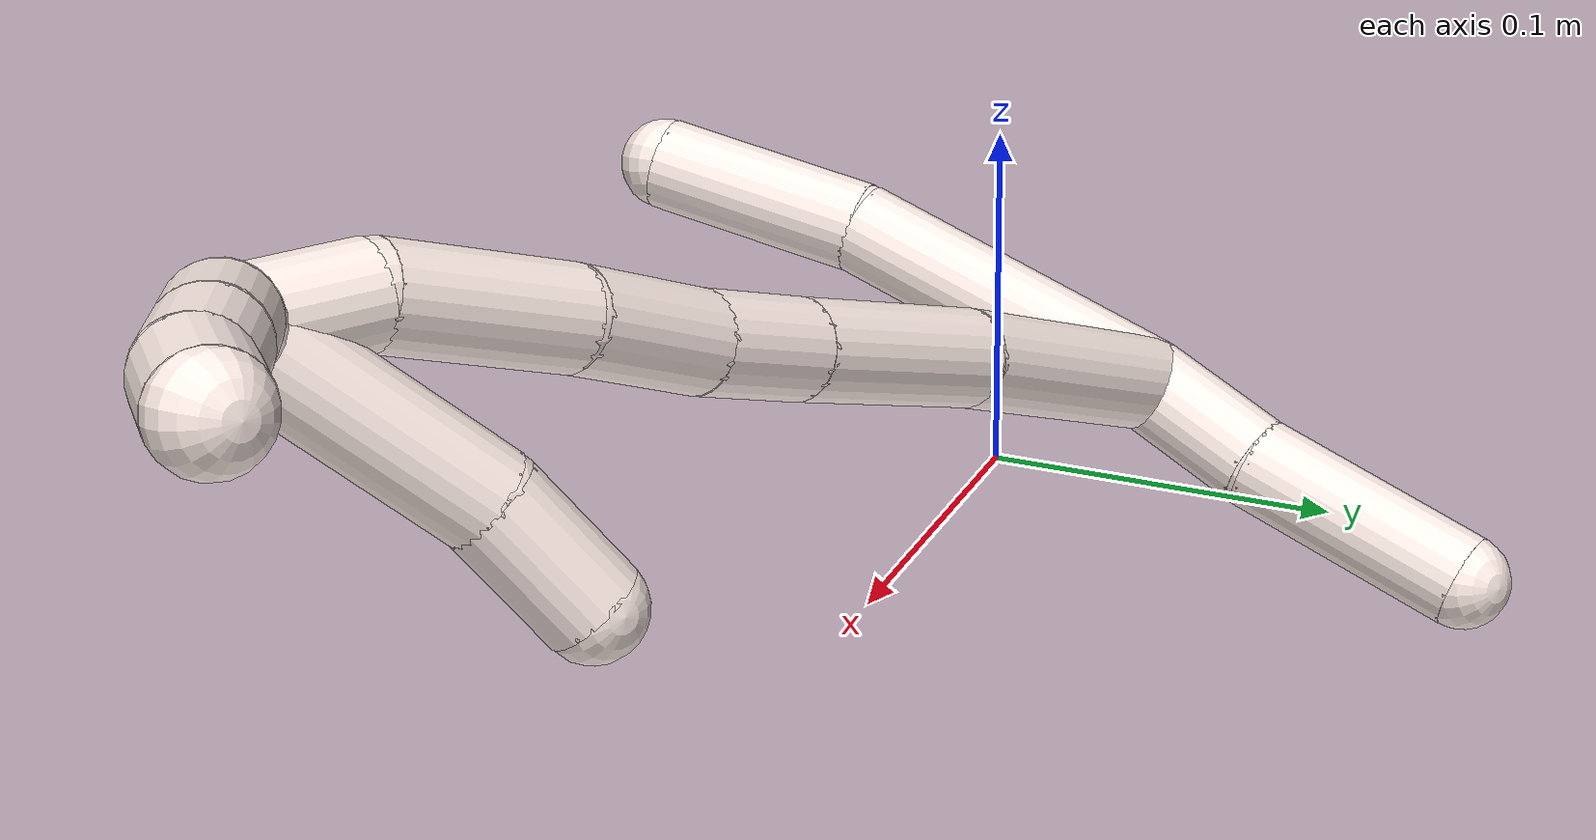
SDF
<sdf version="1.7">
 <world name="default">
  <model name="11">
   <static>0</static>
   <link name="11">
    <collision name="collision-cylinder-e_1_2_8">
     <pose>0.018487 -0.021534 -0.035507 2.59643 0.418842 1.30014</pose>
     <geometry><cylinder><radius>0.0125</radius><length>0.090911</length></cylinder></geometry>
     <surface>
      <friction><ode><mu>1.16</mu><mu2>1.16</mu2><slip1>0</slip1><slip2>0</slip2></ode></friction>
      <contact><ode><kp>1e+06</kp><kd>1</kd><max_vel>0</max_vel><min_depth>0.001</min_depth></ode></contact>
     </surface>
    </collision>
    <visual name="visual-cylinder-e_1_2_8">
     <pose>0.018487 -0.021534 -0.035507 2.59643 0.418842 1.30014</pose>
     <geometry><cylinder><radius>0.0125</radius><length>0.090911</length></cylinder></geometry>
     <material><ambient>1 0.933333 0.909804 1</ambient></material>
    </visual>
    <collision name="collision-cylinder-e_2_8_6">
     <pose>0.051861 -0.053023 -0.094511 2.74083 0.528096 1.85301</pose>
     <geometry><cylinder><radius>0.0125</radius><length>0.059089</length></cylinder></geometry>
     <surface>
      <friction><ode><mu>1.16</mu><mu2>1.16</mu2><slip1>0</slip1><slip2>0</slip2></ode></friction>
      <contact><ode><kp>1e+06</kp><kd>1</kd><max_vel>0</max_vel><min_depth>0.001</min_depth></ode></contact>
     </surface>
    </collision>
    <visual name="visual-cylinder-e_2_8_6">
     <pose>0.051861 -0.053023 -0.094511 2.74083 0.528096 1.85301</pose>
     <geometry><cylinder><radius>0.0125</radius><length>0.059089</length></cylinder></geometry>
     <material><ambient>1 0.933333 0.909804 1</ambient></material>
    </visual>
    <collision name="collision-cylinder-e_1_2_9">
     <pose>-0.004107 0.009705 0.015467 -0.560374 -0.221217 0.063896</pose>
     <geometry><cylinder><radius>0.0125</radius><length>0.037432</length></cylinder></geometry>
     <surface>
      <friction><ode><mu>1.16</mu><mu2>1.16</mu2><slip1>0</slip1><slip2>0</slip2></ode></friction>
      <contact><ode><kp>1e+06</kp><kd>1</kd><max_vel>0</max_vel><min_depth>0.001</min_depth></ode></contact>
     </surface>
    </collision>
    <visual name="visual-cylinder-e_1_2_9">
     <pose>-0.004107 0.009705 0.015467 -0.560374 -0.221217 0.063896</pose>
     <geometry><cylinder><radius>0.0125</radius><length>0.037432</length></cylinder></geometry>
     <material><ambient>1 0.933333 0.909804 1</ambient></material>
    </visual>
    <collision name="collision-cylinder-e_2_9_5">
     <pose>-0.01861 0.03387 0.056654 -0.512175 -0.338785 0.089505</pose>
     <geometry><cylinder><radius>0.0125</radius><length>0.062568</length></cylinder></geometry>
     <surface>
      <friction><ode><mu>1.16</mu><mu2>1.16</mu2><slip1>0</slip1><slip2>0</slip2></ode></friction>
      <contact><ode><kp>1e+06</kp><kd>1</kd><max_vel>0</max_vel><min_depth>0.001</min_depth></ode></contact>
     </surface>
    </collision>
    <visual name="visual-cylinder-e_2_9_5">
     <pose>-0.01861 0.03387 0.056654 -0.512175 -0.338785 0.089505</pose>
     <geometry><cylinder><radius>0.0125</radius><length>0.062568</length></cylinder></geometry>
     <material><ambient>1 0.933333 0.909804 1</ambient></material>
    </visual>
    <collision name="collision-cylinder-e_1_2_10">
     <pose>0.037302 -0.013158 0.0085 0.997224 1.17321 0.694481</pose>
     <geometry><cylinder><radius>0.0125</radius><length>0.080916</length></cylinder></geometry>
     <surface>
      <friction><ode><mu>1.16</mu><mu2>1.16</mu2><slip1>0</slip1><slip2>0</slip2></ode></friction>
      <contact><ode><kp>1e+06</kp><kd>1</kd><max_vel>0</max_vel><min_depth>0.001</min_depth></ode></contact>
     </surface>
    </collision>
    <visual name="visual-cylinder-e_1_2_10">
     <pose>0.037302 -0.013158 0.0085 0.997224 1.17321 0.694481</pose>
     <geometry><cylinder><radius>0.0125</radius><length>0.080916</length></cylinder></geometry>
     <material><ambient>1 0.933333 0.909804 1</ambient></material>
    </visual>
    <collision name="collision-cylinder-e_2_10_11">
     <pose>0.103616 -0.034647 0.021998 1.03048 1.24767 0.773991</pose>
     <geometry><cylinder><radius>0.0125</radius><length>0.06119</length></cylinder></geometry>
     <surface>
      <friction><ode><mu>1.16</mu><mu2>1.16</mu2><slip1>0</slip1><slip2>0</slip2></ode></friction>
      <contact><ode><kp>1e+06</kp><kd>1</kd><max_vel>0</max_vel><min_depth>0.001</min_depth></ode></contact>
     </surface>
    </collision>
    <visual name="visual-cylinder-e_2_10_11">
     <pose>0.103616 -0.034647 0.021998 1.03048 1.24767 0.773991</pose>
     <geometry><cylinder><radius>0.0125</radius><length>0.06119</length></cylinder></geometry>
     <material><ambient>1 0.933333 0.909804 1</ambient></material>
    </visual>
    <collision name="collision-cylinder-e_3_11_12">
     <pose>0.148235 -0.047719 0.029393 1.10249 1.24271 0.82932</pose>
     <geometry><cylinder><radius>0.0125</radius><length>0.032974</length></cylinder></geometry>
     <surface>
      <friction><ode><mu>1.16</mu><mu2>1.16</mu2><slip1>0</slip1><slip2>0</slip2></ode></friction>
      <contact><ode><kp>1e+06</kp><kd>1</kd><max_vel>0</max_vel><min_depth>0.001</min_depth></ode></contact>
     </surface>
    </collision>
    <visual name="visual-cylinder-e_3_11_12">
     <pose>0.148235 -0.047719 0.029393 1.10249 1.24271 0.82932</pose>
     <geometry><cylinder><radius>0.0125</radius><length>0.032974</length></cylinder></geometry>
     <material><ambient>1 0.933333 0.909804 1</ambient></material>
    </visual>
    <collision name="collision-cylinder-e_4_12_13">
     <pose>0.182185 -0.059672 0.035109 1.13963 1.16231 0.796667</pose>
     <geometry><cylinder><radius>0.0125</radius><length>0.039972</length></cylinder></geometry>
     <surface>
      <friction><ode><mu>1.16</mu><mu2>1.16</mu2><slip1>0</slip1><slip2>0</slip2></ode></friction>
      <contact><ode><kp>1e+06</kp><kd>1</kd><max_vel>0</max_vel><min_depth>0.001</min_depth></ode></contact>
     </surface>
    </collision>
    <visual name="visual-cylinder-e_4_12_13">
     <pose>0.182185 -0.059672 0.035109 1.13963 1.16231 0.796667</pose>
     <geometry><cylinder><radius>0.0125</radius><length>0.039972</length></cylinder></geometry>
     <material><ambient>1 0.933333 0.909804 1</ambient></material>
    </visual>
    <collision name="collision-cylinder-e_5_13_14">
     <pose>0.225351 -0.075106 0.039363 1.45748 1.24904 1.14342</pose>
     <geometry><cylinder><radius>0.0125</radius><length>0.052335</length></cylinder></geometry>
     <surface>
      <friction><ode><mu>1.16</mu><mu2>1.16</mu2><slip1>0</slip1><slip2>0</slip2></ode></friction>
      <contact><ode><kp>1e+06</kp><kd>1</kd><max_vel>0</max_vel><min_depth>0.001</min_depth></ode></contact>
     </surface>
    </collision>
    <visual name="visual-cylinder-e_5_13_14">
     <pose>0.225351 -0.075106 0.039363 1.45748 1.24904 1.14342</pose>
     <geometry><cylinder><radius>0.0125</radius><length>0.052335</length></cylinder></geometry>
     <material><ambient>1 0.933333 0.909804 1</ambient></material>
    </visual>
    <collision name="collision-cylinder-e_6_14_1">
     <pose>0.266466 -0.083338 0.039572 3.12717 1.5262 3.12651</pose>
     <geometry><cylinder><radius>0.0125</radius><length>0.032613</length></cylinder></geometry>
     <surface>
      <friction><ode><mu>1.16</mu><mu2>1.16</mu2><slip1>0</slip1><slip2>0</slip2></ode></friction>
      <contact><ode><kp>1e+06</kp><kd>1</kd><max_vel>0</max_vel><min_depth>0.001</min_depth></ode></contact>
     </surface>
    </collision>
    <visual name="visual-cylinder-e_6_14_1">
     <pose>0.266466 -0.083338 0.039572 3.12717 1.5262 3.12651</pose>
     <geometry><cylinder><radius>0.0125</radius><length>0.032613</length></cylinder></geometry>
     <material><ambient>1 0.933333 0.909804 1</ambient></material>
    </visual>
    <collision name="collision-cylinder-e_1_1_15">
     <pose>0.259985 -0.060335 0.047258 -1.2203 -0.74876 0.536175</pose>
     <geometry><cylinder><radius>0.0125</radius><length>0.066901</length></cylinder></geometry>
     <surface>
      <friction><ode><mu>1.16</mu><mu2>1.16</mu2><slip1>0</slip1><slip2>0</slip2></ode></friction>
      <contact><ode><kp>1e+06</kp><kd>1</kd><max_vel>0</max_vel><min_depth>0.001</min_depth></ode></contact>
     </surface>
    </collision>
    <visual name="visual-cylinder-e_1_1_15">
     <pose>0.259985 -0.060335 0.047258 -1.2203 -0.74876 0.536175</pose>
     <geometry><cylinder><radius>0.0125</radius><length>0.066901</length></cylinder></geometry>
     <material><ambient>1 0.933333 0.909804 1</ambient></material>
    </visual>
    <collision name="collision-cylinder-e_2_15_4">
     <pose>0.228463 -0.0238 0.059477 -1.29651 -0.557188 0.426718</pose>
     <geometry><cylinder><radius>0.0125</radius><length>0.033099</length></cylinder></geometry>
     <surface>
      <friction><ode><mu>1.16</mu><mu2>1.16</mu2><slip1>0</slip1><slip2>0</slip2></ode></friction>
      <contact><ode><kp>1e+06</kp><kd>1</kd><max_vel>0</max_vel><min_depth>0.001</min_depth></ode></contact>
     </surface>
    </collision>
    <visual name="visual-cylinder-e_2_15_4">
     <pose>0.228463 -0.0238 0.059477 -1.29651 -0.557188 0.426718</pose>
     <geometry><cylinder><radius>0.0125</radius><length>0.033099</length></cylinder></geometry>
     <material><ambient>1 0.933333 0.909804 1</ambient></material>
    </visual>
    <collision name="collision-cylinder-e_1_1_16">
     <pose>0.289711 -0.087139 0.051866 0.283283 0.473881 0.06884</pose>
     <geometry><cylinder><radius>0.0125</radius><length>0.030482</length></cylinder></geometry>
     <surface>
      <friction><ode><mu>1.16</mu><mu2>1.16</mu2><slip1>0</slip1><slip2>0</slip2></ode></friction>
      <contact><ode><kp>1e+06</kp><kd>1</kd><max_vel>0</max_vel><min_depth>0.001</min_depth></ode></contact>
     </surface>
    </collision>
    <visual name="visual-cylinder-e_1_1_16">
     <pose>0.289711 -0.087139 0.051866 0.283283 0.473881 0.06884</pose>
     <geometry><cylinder><radius>0.0125</radius><length>0.030482</length></cylinder></geometry>
     <material><ambient>1 0.933333 0.909804 1</ambient></material>
    </visual>
    <collision name="collision-cylinder-e_2_16_17">
     <pose>0.303445 -0.091376 0.07573 0.041131 0.55832 0.011792</pose>
     <geometry><cylinder><radius>0.0125</radius><length>0.025589</length></cylinder></geometry>
     <surface>
      <friction><ode><mu>1.16</mu><mu2>1.16</mu2><slip1>0</slip1><slip2>0</slip2></ode></friction>
      <contact><ode><kp>1e+06</kp><kd>1</kd><max_vel>0</max_vel><min_depth>0.001</min_depth></ode></contact>
     </surface>
    </collision>
    <visual name="visual-cylinder-e_2_16_17">
     <pose>0.303445 -0.091376 0.07573 0.041131 0.55832 0.011792</pose>
     <geometry><cylinder><radius>0.0125</radius><length>0.025589</length></cylinder></geometry>
     <material><ambient>1 0.933333 0.909804 1</ambient></material>
    </visual>
    <collision name="collision-cylinder-e_3_17_18">
     <pose>0.316421 -0.09139 0.095346 -0.049191 0.614447 -0.01561</pose>
     <geometry><cylinder><radius>0.0125</radius><length>0.021503</length></cylinder></geometry>
     <surface>
      <friction><ode><mu>1.16</mu><mu2>1.16</mu2><slip1>0</slip1><slip2>0</slip2></ode></friction>
      <contact><ode><kp>1e+06</kp><kd>1</kd><max_vel>0</max_vel><min_depth>0.001</min_depth></ode></contact>
     </surface>
    </collision>
    <visual name="visual-cylinder-e_3_17_18">
     <pose>0.316421 -0.09139 0.095346 -0.049191 0.614447 -0.01561</pose>
     <geometry><cylinder><radius>0.0125</radius><length>0.021503</length></cylinder></geometry>
     <material><ambient>1 0.933333 0.909804 1</ambient></material>
    </visual>
    <collision name="collision-cylinder-e_4_18_3">
     <pose>0.326596 -0.090064 0.114566 -0.085379 0.362611 -0.015661</pose>
     <geometry><cylinder><radius>0.0125</radius><length>0.022426</length></cylinder></geometry>
     <surface>
      <friction><ode><mu>1.16</mu><mu2>1.16</mu2><slip1>0</slip1><slip2>0</slip2></ode></friction>
      <contact><ode><kp>1e+06</kp><kd>1</kd><max_vel>0</max_vel><min_depth>0.001</min_depth></ode></contact>
     </surface>
    </collision>
    <visual name="visual-cylinder-e_4_18_3">
     <pose>0.326596 -0.090064 0.114566 -0.085379 0.362611 -0.015661</pose>
     <geometry><cylinder><radius>0.0125</radius><length>0.022426</length></cylinder></geometry>
     <material><ambient>1 0.933333 0.909804 1</ambient></material>
    </visual>
    <collision name="collision-sphere-3">
     <pose>0.330574 -0.08917 0.125012 0 -0 0</pose>
     <geometry><sphere><radius>0.0125</radius></sphere></geometry>
     <surface>
      <friction><ode><mu>1.16</mu><mu2>1.16</mu2><slip1>0</slip1><slip2>0</slip2></ode></friction>
      <contact><ode><kp>1e+06</kp><kd>1</kd><max_vel>0</max_vel><min_depth>0.001</min_depth></ode></contact>
     </surface>
    </collision>
    <visual name="visual-sphere-3">
     <pose>0.330574 -0.08917 0.125012 0 -0 0</pose>
     <geometry><sphere><radius>0.0125</radius></sphere></geometry>
     <material><ambient>1 0.933333 0.909804 1</ambient></material>
    </visual>
    <collision name="collision-sphere-10">
     <pose>0.074604 -0.026316 0.017001 0 -0 0</pose>
     <geometry><sphere><radius>0.0125</radius></sphere></geometry>
     <surface>
      <friction><ode><mu>1.16</mu><mu2>1.16</mu2><slip1>0</slip1><slip2>0</slip2></ode></friction>
      <contact><ode><kp>1e+06</kp><kd>1</kd><max_vel>0</max_vel><min_depth>0.001</min_depth></ode></contact>
     </surface>
    </collision>
    <visual name="visual-sphere-10">
     <pose>0.074604 -0.026316 0.017001 0 -0 0</pose>
     <geometry><sphere><radius>0.0125</radius></sphere></geometry>
     <material><ambient>1 0.933333 0.909804 1</ambient></material>
    </visual>
    <collision name="collision-sphere-5">
     <pose>-0.029007 0.04833 0.082374 0 -0 0</pose>
     <geometry><sphere><radius>0.0125</radius></sphere></geometry>
     <surface>
      <friction><ode><mu>1.16</mu><mu2>1.16</mu2><slip1>0</slip1><slip2>0</slip2></ode></friction>
      <contact><ode><kp>1e+06</kp><kd>1</kd><max_vel>0</max_vel><min_depth>0.001</min_depth></ode></contact>
     </surface>
    </collision>
    <visual name="visual-sphere-5">
     <pose>-0.029007 0.04833 0.082374 0 -0 0</pose>
     <geometry><sphere><radius>0.0125</radius></sphere></geometry>
     <material><ambient>1 0.933333 0.909804 1</ambient></material>
    </visual>
    <collision name="collision-sphere-6">
     <pose>0.066748 -0.062979 -0.118009 0 -0 0</pose>
     <geometry><sphere><radius>0.0125</radius></sphere></geometry>
     <surface>
      <friction><ode><mu>1.16</mu><mu2>1.16</mu2><slip1>0</slip1><slip2>0</slip2></ode></friction>
      <contact><ode><kp>1e+06</kp><kd>1</kd><max_vel>0</max_vel><min_depth>0.001</min_depth></ode></contact>
     </surface>
    </collision>
    <visual name="visual-sphere-6">
     <pose>0.066748 -0.062979 -0.118009 0 -0 0</pose>
     <geometry><sphere><radius>0.0125</radius></sphere></geometry>
     <material><ambient>1 0.933333 0.909804 1</ambient></material>
    </visual>
    <collision name="collision-sphere-9">
     <pose>-0.008213 0.01941 0.030934 0 -0 0</pose>
     <geometry><sphere><radius>0.0125</radius></sphere></geometry>
     <surface>
      <friction><ode><mu>1.16</mu><mu2>1.16</mu2><slip1>0</slip1><slip2>0</slip2></ode></friction>
      <contact><ode><kp>1e+06</kp><kd>1</kd><max_vel>0</max_vel><min_depth>0.001</min_depth></ode></contact>
     </surface>
    </collision>
    <visual name="visual-sphere-9">
     <pose>-0.008213 0.01941 0.030934 0 -0 0</pose>
     <geometry><sphere><radius>0.0125</radius></sphere></geometry>
     <material><ambient>1 0.933333 0.909804 1</ambient></material>
    </visual>
    <collision name="collision-sphere-2">
     <geometry><sphere><radius>0.0125</radius></sphere></geometry>
     <surface>
      <friction><ode><mu>1.16</mu><mu2>1.16</mu2><slip1>0</slip1><slip2>0</slip2></ode></friction>
      <contact><ode><kp>1e+06</kp><kd>1</kd><max_vel>0</max_vel><min_depth>0.001</min_depth></ode></contact>
     </surface>
    </collision>
    <visual name="visual-sphere-2">
     <geometry><sphere><radius>0.0125</radius></sphere></geometry>
     <material><ambient>1 0.933333 0.909804 1</ambient></material>
    </visual>
    <collision name="collision-sphere-8">
     <pose>0.036974 -0.043067 -0.071014 0 -0 0</pose>
     <geometry><sphere><radius>0.0125</radius></sphere></geometry>
     <surface>
      <friction><ode><mu>1.16</mu><mu2>1.16</mu2><slip1>0</slip1><slip2>0</slip2></ode></friction>
      <contact><ode><kp>1e+06</kp><kd>1</kd><max_vel>0</max_vel><min_depth>0.001</min_depth></ode></contact>
     </surface>
    </collision>
    <visual name="visual-sphere-8">
     <pose>0.036974 -0.043067 -0.071014 0 -0 0</pose>
     <geometry><sphere><radius>0.0125</radius></sphere></geometry>
     <material><ambient>1 0.933333 0.909804 1</ambient></material>
    </visual>
    <collision name="collision-sphere-11">
     <pose>0.132628 -0.042978 0.026995 0 -0 0</pose>
     <geometry><sphere><radius>0.0125</radius></sphere></geometry>
     <surface>
      <friction><ode><mu>1.16</mu><mu2>1.16</mu2><slip1>0</slip1><slip2>0</slip2></ode></friction>
      <contact><ode><kp>1e+06</kp><kd>1</kd><max_vel>0</max_vel><min_depth>0.001</min_depth></ode></contact>
     </surface>
    </collision>
    <visual name="visual-sphere-11">
     <pose>0.132628 -0.042978 0.026995 0 -0 0</pose>
     <geometry><sphere><radius>0.0125</radius></sphere></geometry>
     <material><ambient>1 0.933333 0.909804 1</ambient></material>
    </visual>
    <collision name="collision-sphere-12">
     <pose>0.163843 -0.052459 0.031791 0 -0 0</pose>
     <geometry><sphere><radius>0.0125</radius></sphere></geometry>
     <surface>
      <friction><ode><mu>1.16</mu><mu2>1.16</mu2><slip1>0</slip1><slip2>0</slip2></ode></friction>
      <contact><ode><kp>1e+06</kp><kd>1</kd><max_vel>0</max_vel><min_depth>0.001</min_depth></ode></contact>
     </surface>
    </collision>
    <visual name="visual-sphere-12">
     <pose>0.163843 -0.052459 0.031791 0 -0 0</pose>
     <geometry><sphere><radius>0.0125</radius></sphere></geometry>
     <material><ambient>1 0.933333 0.909804 1</ambient></material>
    </visual>
    <collision name="collision-sphere-13">
     <pose>0.200526 -0.066884 0.038427 0 -0 0</pose>
     <geometry><sphere><radius>0.0125</radius></sphere></geometry>
     <surface>
      <friction><ode><mu>1.16</mu><mu2>1.16</mu2><slip1>0</slip1><slip2>0</slip2></ode></friction>
      <contact><ode><kp>1e+06</kp><kd>1</kd><max_vel>0</max_vel><min_depth>0.001</min_depth></ode></contact>
     </surface>
    </collision>
    <visual name="visual-sphere-13">
     <pose>0.200526 -0.066884 0.038427 0 -0 0</pose>
     <geometry><sphere><radius>0.0125</radius></sphere></geometry>
     <material><ambient>1 0.933333 0.909804 1</ambient></material>
    </visual>
    <collision name="collision-sphere-14">
     <pose>0.250176 -0.083328 0.040299 0 -0 0</pose>
     <geometry><sphere><radius>0.0125</radius></sphere></geometry>
     <surface>
      <friction><ode><mu>1.16</mu><mu2>1.16</mu2><slip1>0</slip1><slip2>0</slip2></ode></friction>
      <contact><ode><kp>1e+06</kp><kd>1</kd><max_vel>0</max_vel><min_depth>0.001</min_depth></ode></contact>
     </surface>
    </collision>
    <visual name="visual-sphere-14">
     <pose>0.250176 -0.083328 0.040299 0 -0 0</pose>
     <geometry><sphere><radius>0.0125</radius></sphere></geometry>
     <material><ambient>1 0.933333 0.909804 1</ambient></material>
    </visual>
    <collision name="collision-sphere-1">
     <pose>0.282756 -0.083349 0.038845 0 -0 0</pose>
     <geometry><sphere><radius>0.0125</radius></sphere></geometry>
     <surface>
      <friction><ode><mu>1.16</mu><mu2>1.16</mu2><slip1>0</slip1><slip2>0</slip2></ode></friction>
      <contact><ode><kp>1e+06</kp><kd>1</kd><max_vel>0</max_vel><min_depth>0.001</min_depth></ode></contact>
     </surface>
    </collision>
    <visual name="visual-sphere-1">
     <pose>0.282756 -0.083349 0.038845 0 -0 0</pose>
     <geometry><sphere><radius>0.0125</radius></sphere></geometry>
     <material><ambient>1 0.933333 0.909804 1</ambient></material>
    </visual>
    <collision name="collision-sphere-18">
     <pose>0.322619 -0.090958 0.10412 0 -0 0</pose>
     <geometry><sphere><radius>0.0125</radius></sphere></geometry>
     <surface>
      <friction><ode><mu>1.16</mu><mu2>1.16</mu2><slip1>0</slip1><slip2>0</slip2></ode></friction>
      <contact><ode><kp>1e+06</kp><kd>1</kd><max_vel>0</max_vel><min_depth>0.001</min_depth></ode></contact>
     </surface>
    </collision>
    <visual name="visual-sphere-18">
     <pose>0.322619 -0.090958 0.10412 0 -0 0</pose>
     <geometry><sphere><radius>0.0125</radius></sphere></geometry>
     <material><ambient>1 0.933333 0.909804 1</ambient></material>
    </visual>
    <collision name="collision-sphere-15">
     <pose>0.237214 -0.037321 0.055672 0 -0 0</pose>
     <geometry><sphere><radius>0.0125</radius></sphere></geometry>
     <surface>
      <friction><ode><mu>1.16</mu><mu2>1.16</mu2><slip1>0</slip1><slip2>0</slip2></ode></friction>
      <contact><ode><kp>1e+06</kp><kd>1</kd><max_vel>0</max_vel><min_depth>0.001</min_depth></ode></contact>
     </surface>
    </collision>
    <visual name="visual-sphere-15">
     <pose>0.237214 -0.037321 0.055672 0 -0 0</pose>
     <geometry><sphere><radius>0.0125</radius></sphere></geometry>
     <material><ambient>1 0.933333 0.909804 1</ambient></material>
    </visual>
    <collision name="collision-sphere-4">
     <pose>0.219712 -0.010278 0.063281 0 -0 0</pose>
     <geometry><sphere><radius>0.0125</radius></sphere></geometry>
     <surface>
      <friction><ode><mu>1.16</mu><mu2>1.16</mu2><slip1>0</slip1><slip2>0</slip2></ode></friction>
      <contact><ode><kp>1e+06</kp><kd>1</kd><max_vel>0</max_vel><min_depth>0.001</min_depth></ode></contact>
     </surface>
    </collision>
    <visual name="visual-sphere-4">
     <pose>0.219712 -0.010278 0.063281 0 -0 0</pose>
     <geometry><sphere><radius>0.0125</radius></sphere></geometry>
     <material><ambient>1 0.933333 0.909804 1</ambient></material>
    </visual>
    <collision name="collision-sphere-16">
     <pose>0.296667 -0.09093 0.064887 0 -0 0</pose>
     <geometry><sphere><radius>0.0125</radius></sphere></geometry>
     <surface>
      <friction><ode><mu>1.16</mu><mu2>1.16</mu2><slip1>0</slip1><slip2>0</slip2></ode></friction>
      <contact><ode><kp>1e+06</kp><kd>1</kd><max_vel>0</max_vel><min_depth>0.001</min_depth></ode></contact>
     </surface>
    </collision>
    <visual name="visual-sphere-16">
     <pose>0.296667 -0.09093 0.064887 0 -0 0</pose>
     <geometry><sphere><radius>0.0125</radius></sphere></geometry>
     <material><ambient>1 0.933333 0.909804 1</ambient></material>
    </visual>
    <collision name="collision-sphere-17">
     <pose>0.310223 -0.091822 0.086572 0 -0 0</pose>
     <geometry><sphere><radius>0.0125</radius></sphere></geometry>
     <surface>
      <friction><ode><mu>1.16</mu><mu2>1.16</mu2><slip1>0</slip1><slip2>0</slip2></ode></friction>
      <contact><ode><kp>1e+06</kp><kd>1</kd><max_vel>0</max_vel><min_depth>0.001</min_depth></ode></contact>
     </surface>
    </collision>
    <visual name="visual-sphere-17">
     <pose>0.310223 -0.091822 0.086572 0 -0 0</pose>
     <geometry><sphere><radius>0.0125</radius></sphere></geometry>
     <material><ambient>1 0.933333 0.909804 1</ambient></material>
    </visual>
    <inertial>
     <pose>0.134825 -0.040272 0.021782 0 -0 0</pose>
     <mass>0.75</mass>
     <inertia>
      <ixx>0.000227</ixx>
      <ixy>0</ixy>
      <ixz>0</ixz>
      <iyy>0.000261</iyy>
      <iyz>0</iyz>
      <izz>-6.2e-05</izz>
     </inertia>
    </inertial>
   </link>
   <pose>0.051569 0.061342 0.054939 -1.37872 -0.031992 -0.508428</pose>
  </model>
 </world>
</sdf>
